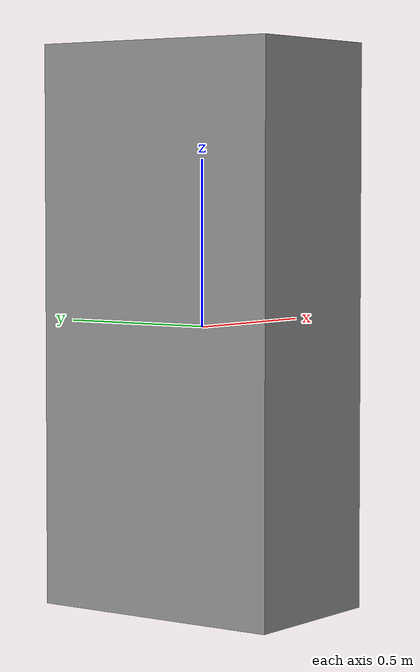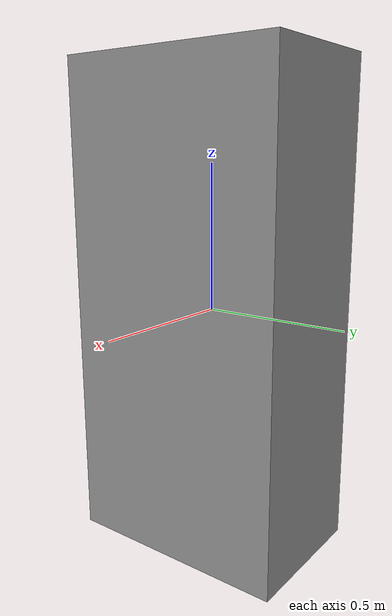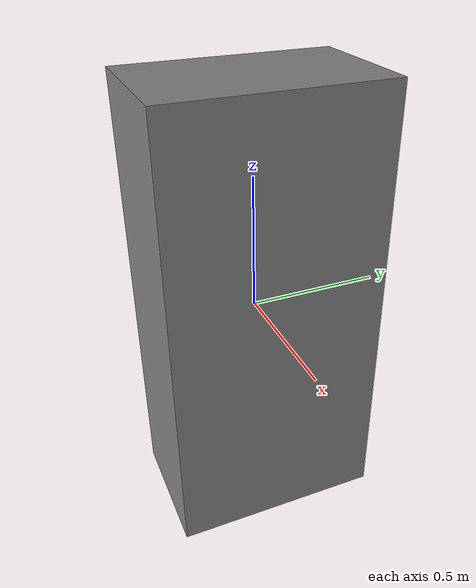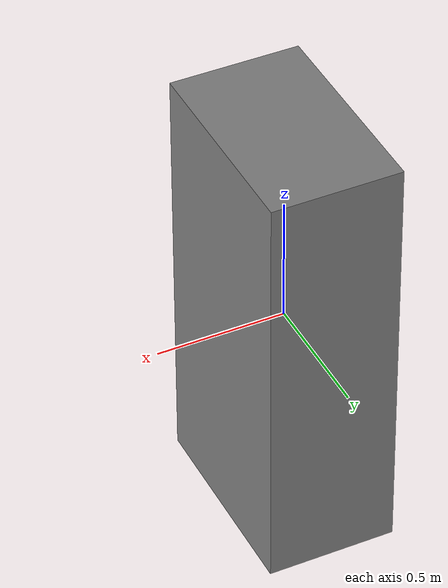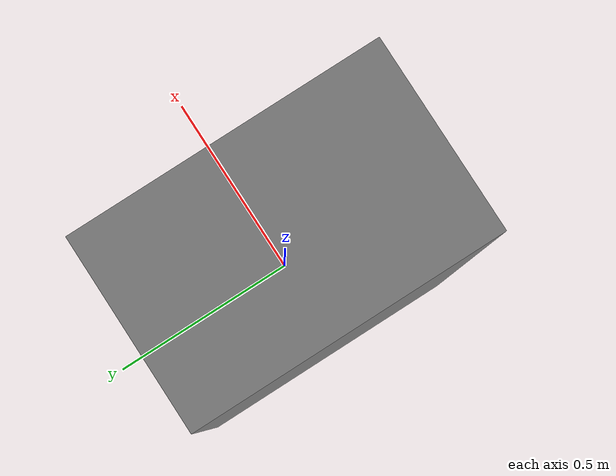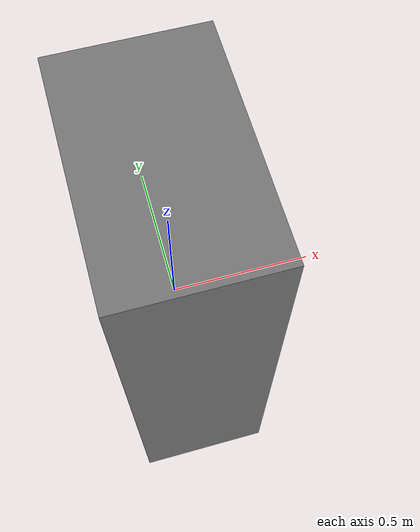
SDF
<sdf version='1.9'>
  <model name='table'>
    <static>true</static>
    <link name='table'>
      <pose>0 0 0 0 -0 0</pose>
      <inertial>
        <pose>0 0.04617 0.38 0 -0 0</pose>
        <mass>35.4321</mass>
        <inertia>
          <ixx>1.73083</ixx>
          <ixy>2.01582e-11</ixy>
          <ixz>2.78594e-13</ixz>
          <iyy>5.32936</iyy>
          <iyz>4.32952e-13</iyz>
          <izz>3.81098</izz>
        </inertia>
      </inertial>
      <collision name='table_collision'>
        <pose>0 0 0 0 -0 0</pose>
        <geometry>
          <box>
            <size>0.5 0.8 1.69</size>
          </box>
        </geometry>
      </collision>
      <visual name='table_visual'>
        <pose>0 0 0 0 -0 0</pose>
        <geometry>
          <box>
            <size>0.5 0.8 1.685</size>
          </box>
        </geometry>
        <material>
          <diffuse>0.5 0.5 0.5 1</diffuse>
          <specular>0.5 0.5 0.5 1</specular>
          <ambient>0.5 0.5 0.5 1</ambient>
        </material>
      </visual>
    </link>
  </model>
</sdf>
